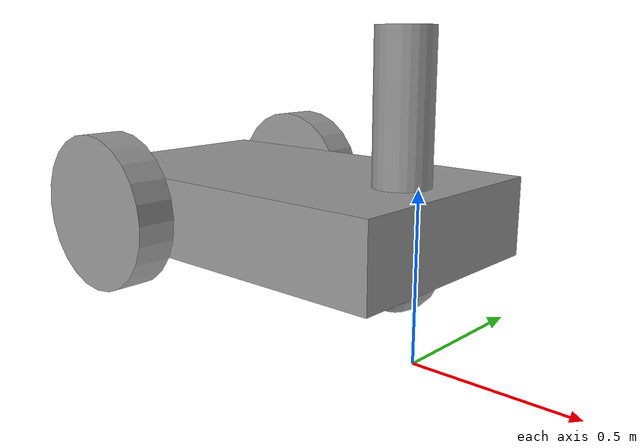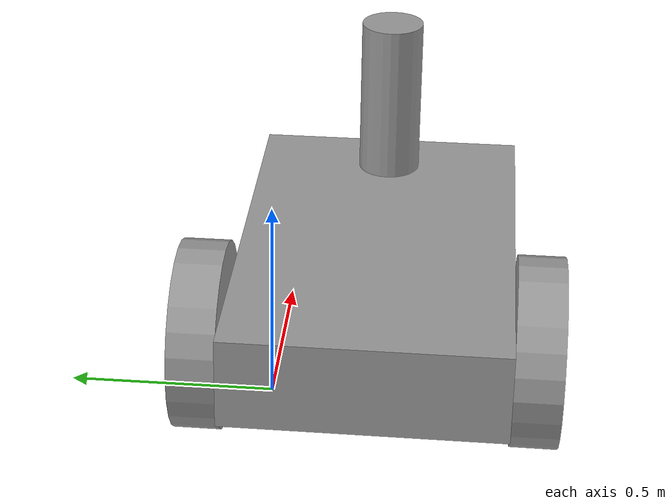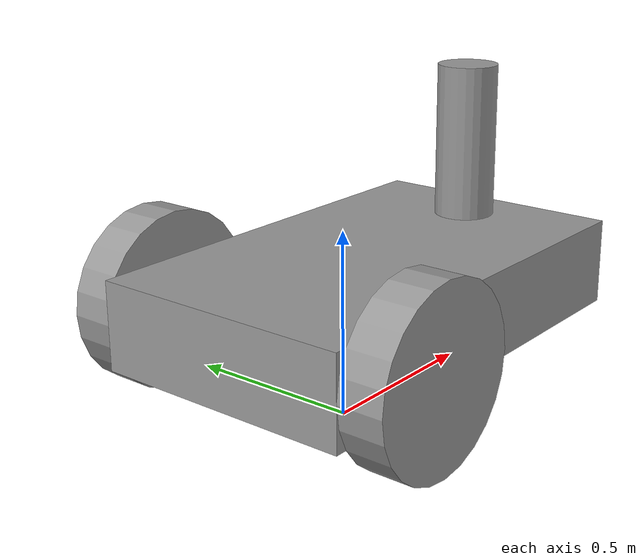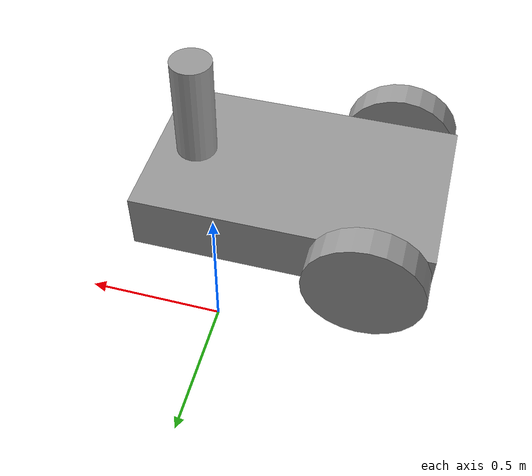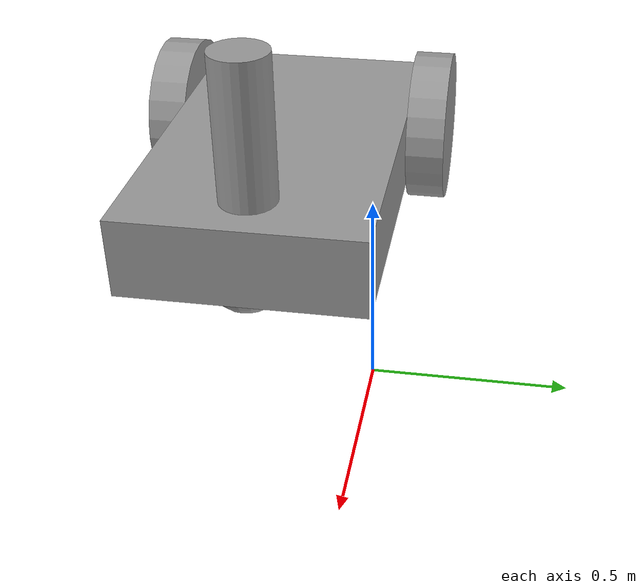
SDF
<?xml version='1.0'?>
<sdf version='1.7'>
  <model name='jason_bot'>
    <link name='link_1'>
      <inertial>
        <mass>0.111959</mass>
        <inertia>
          <ixx>0.00973396</ixx>
          <ixy>0</ixy>
          <ixz>0</ixz>
          <iyy>0.00310474</iyy>
          <iyz>0</iyz>
          <izz>0.0120306</izz>
        </inertia>
        <pose>0 0 0 0 -0 0</pose>
      </inertial>
      <pose>-0.224 -0.262981 0.465613 0 -0 0</pose>
      <gravity>1</gravity>
      <self_collide>0</self_collide>
      <kinematic>0</kinematic>
      <enable_wind>0</enable_wind>
      <visual name='visual'>
        <pose>0 0 0 0 -0 0</pose>
        <geometry>
          <box>
            <size>1 0.6 0.2</size>
          </box>
        </geometry>
        <material>
          <lighting>1</lighting>
          <script>
            <uri>file://media/materials/scripts/gazebo.material</uri>
            <name>Gazebo/Grey</name>
          </script>
          <shader type='pixel'>
            <normal_map>__default__</normal_map>
          </shader>
          <ambient>0.3 0.3 0.3 1</ambient>
          <diffuse>0.7 0.7 0.7 1</diffuse>
          <specular>0.01 0.01 0.01 1</specular>
          <emissive>0 0 0 1</emissive>
        </material>
        <transparency>0</transparency>
        <cast_shadows>1</cast_shadows>
      </visual>
      <collision name='collision'>
        <laser_retro>0</laser_retro>
        <max_contacts>10</max_contacts>
        <pose>0 0 0 0 -0 0</pose>
        <geometry>
          <box>
            <size>1 0.6 0.2</size>
          </box>
        </geometry>
        <surface>
          <friction>
            <ode>
              <mu>1</mu>
              <mu2>1</mu2>
              <fdir1>0 0 0</fdir1>
              <slip1>0</slip1>
              <slip2>0</slip2>
            </ode>
            <torsional>
              <coefficient>1</coefficient>
              <patch_radius>0</patch_radius>
              <surface_radius>0</surface_radius>
              <use_patch_radius>1</use_patch_radius>
              <ode>
                <slip>0</slip>
              </ode>
            </torsional>
          </friction>
          <bounce>
            <restitution_coefficient>0</restitution_coefficient>
            <threshold>1e+06</threshold>
          </bounce>
          <contact>
            <collide_without_contact>0</collide_without_contact>
            <collide_without_contact_bitmask>1</collide_without_contact_bitmask>
            <collide_bitmask>1</collide_bitmask>
            <ode>
              <soft_cfm>0</soft_cfm>
              <soft_erp>0.2</soft_erp>
              <kp>1e+13</kp>
              <kd>1</kd>
              <max_vel>0.01</max_vel>
              <min_depth>0</min_depth>
            </ode>
            <bullet>
              <split_impulse>1</split_impulse>
              <split_impulse_penetration_threshold>-0.01</split_impulse_penetration_threshold>
              <soft_cfm>0</soft_cfm>
              <soft_erp>0.2</soft_erp>
              <kp>1e+13</kp>
              <kd>1</kd>
            </bullet>
          </contact>
        </surface>
      </collision>
    </link>
    <link name='link_2'>
      <inertial>
        <mass>1</mass>
        <inertia>
          <ixx>0.145833</ixx>
          <ixy>0</ixy>
          <ixz>0</ixz>
          <iyy>0.145833</iyy>
          <iyz>0</iyz>
          <izz>0.125</izz>
        </inertia>
        <pose>0 0 0 0 -0 0</pose>
      </inertial>
      <pose>-0.524 -0.613 0.465613 1.5707 -0 0</pose>
      <gravity>1</gravity>
      <self_collide>0</self_collide>
      <kinematic>0</kinematic>
      <enable_wind>0</enable_wind>
      <visual name='visual'>
        <pose>0 0 0 0 -0 0</pose>
        <geometry>
          <cylinder>
            <radius>0.2</radius>
            <length>0.1</length>
          </cylinder>
        </geometry>
        <material>
          <lighting>1</lighting>
          <script>
            <uri>file://media/materials/scripts/gazebo.material</uri>
            <name>Gazebo/Grey</name>
          </script>
          <shader type='pixel'>
            <normal_map>__default__</normal_map>
          </shader>
          <ambient>0.3 0.3 0.3 1</ambient>
          <diffuse>0.7 0.7 0.7 1</diffuse>
          <specular>0.01 0.01 0.01 1</specular>
          <emissive>0 0 0 1</emissive>
        </material>
        <transparency>0</transparency>
        <cast_shadows>1</cast_shadows>
      </visual>
      <collision name='collision'>
        <laser_retro>0</laser_retro>
        <max_contacts>10</max_contacts>
        <pose>0 0 0 0 -0 0</pose>
        <geometry>
          <cylinder>
            <radius>0.2</radius>
            <length>0.1</length>
          </cylinder>
        </geometry>
        <surface>
          <friction>
            <ode>
              <mu>1</mu>
              <mu2>1</mu2>
              <fdir1>0 0 0</fdir1>
              <slip1>0</slip1>
              <slip2>0</slip2>
            </ode>
            <torsional>
              <coefficient>1</coefficient>
              <patch_radius>0</patch_radius>
              <surface_radius>0</surface_radius>
              <use_patch_radius>1</use_patch_radius>
              <ode>
                <slip>0</slip>
              </ode>
            </torsional>
          </friction>
          <bounce>
            <restitution_coefficient>0</restitution_coefficient>
            <threshold>1e+06</threshold>
          </bounce>
          <contact>
            <collide_without_contact>0</collide_without_contact>
            <collide_without_contact_bitmask>1</collide_without_contact_bitmask>
            <collide_bitmask>1</collide_bitmask>
            <ode>
              <soft_cfm>0</soft_cfm>
              <soft_erp>0.2</soft_erp>
              <kp>1e+13</kp>
              <kd>1</kd>
              <max_vel>0.01</max_vel>
              <min_depth>0</min_depth>
            </ode>
            <bullet>
              <split_impulse>1</split_impulse>
              <split_impulse_penetration_threshold>-0.01</split_impulse_penetration_threshold>
              <soft_cfm>0</soft_cfm>
              <soft_erp>0.2</soft_erp>
              <kp>1e+13</kp>
              <kd>1</kd>
            </bullet>
          </contact>
        </surface>
      </collision>
    </link>
    <link name='link_2_clone'>
      <inertial>
        <mass>1</mass>
        <inertia>
          <ixx>0.145833</ixx>
          <ixy>0</ixy>
          <ixz>0</ixz>
          <iyy>0.145833</iyy>
          <iyz>0</iyz>
          <izz>0.125</izz>
        </inertia>
        <pose>0 0 0 0 -0 0</pose>
      </inertial>
      <pose>-0.524 0.087038 0.465613 1.5707 -0 0</pose>
      <gravity>1</gravity>
      <self_collide>0</self_collide>
      <kinematic>0</kinematic>
      <enable_wind>0</enable_wind>
      <visual name='visual'>
        <pose>0 0 0 0 -0 0</pose>
        <geometry>
          <cylinder>
            <radius>0.2</radius>
            <length>0.1</length>
          </cylinder>
        </geometry>
        <material>
          <lighting>1</lighting>
          <script>
            <uri>file://media/materials/scripts/gazebo.material</uri>
            <name>Gazebo/Grey</name>
          </script>
          <shader type='pixel'>
            <normal_map>__default__</normal_map>
          </shader>
          <ambient>0.3 0.3 0.3 1</ambient>
          <diffuse>0.7 0.7 0.7 1</diffuse>
          <specular>0.01 0.01 0.01 1</specular>
          <emissive>0 0 0 1</emissive>
        </material>
        <transparency>0</transparency>
        <cast_shadows>1</cast_shadows>
      </visual>
      <collision name='collision'>
        <laser_retro>0</laser_retro>
        <max_contacts>10</max_contacts>
        <pose>0 0 0 0 -0 0</pose>
        <geometry>
          <cylinder>
            <radius>0.2</radius>
            <length>0.1</length>
          </cylinder>
        </geometry>
        <surface>
          <friction>
            <ode>
              <mu>1</mu>
              <mu2>1</mu2>
              <fdir1>0 0 0</fdir1>
              <slip1>0</slip1>
              <slip2>0</slip2>
            </ode>
            <torsional>
              <coefficient>1</coefficient>
              <patch_radius>0</patch_radius>
              <surface_radius>0</surface_radius>
              <use_patch_radius>1</use_patch_radius>
              <ode>
                <slip>0</slip>
              </ode>
            </torsional>
          </friction>
          <bounce>
            <restitution_coefficient>0</restitution_coefficient>
            <threshold>1e+06</threshold>
          </bounce>
          <contact>
            <collide_without_contact>0</collide_without_contact>
            <collide_without_contact_bitmask>1</collide_without_contact_bitmask>
            <collide_bitmask>1</collide_bitmask>
            <ode>
              <soft_cfm>0</soft_cfm>
              <soft_erp>0.2</soft_erp>
              <kp>1e+13</kp>
              <kd>1</kd>
              <max_vel>0.01</max_vel>
              <min_depth>0</min_depth>
            </ode>
            <bullet>
              <split_impulse>1</split_impulse>
              <split_impulse_penetration_threshold>-0.01</split_impulse_penetration_threshold>
              <soft_cfm>0</soft_cfm>
              <soft_erp>0.2</soft_erp>
              <kp>1e+13</kp>
              <kd>1</kd>
            </bullet>
          </contact>
        </surface>
      </collision>
    </link>
    <link name='link_3'>
      <inertial>
        <mass>0.0096568</mass>
        <inertia>
          <ixx>4.37931e-05</ixx>
          <ixy>0</ixy>
          <ixz>0</ixz>
          <iyy>4.37931e-05</iyy>
          <iyz>0</iyz>
          <izz>4.37931e-05</izz>
        </inertia>
        <pose>0 0 0 0 -0 0</pose>
      </inertial>
      <pose>0.136 -0.279742 0.378612 0 -0 0</pose>
      <visual name='visual'>
        <pose>0 0 0 0 -0 0</pose>
        <geometry>
          <sphere>
            <radius>0.106477</radius>
          </sphere>
        </geometry>
        <material>
          <lighting>1</lighting>
          <script>
            <uri>file://media/materials/scripts/gazebo.material</uri>
            <name>Gazebo/Grey</name>
          </script>
          <shader type='pixel'/>
          <emissive>0 0 0 1</emissive>
        </material>
        <transparency>0</transparency>
        <cast_shadows>1</cast_shadows>
      </visual>
      <collision name='collision'>
        <laser_retro>0</laser_retro>
        <max_contacts>10</max_contacts>
        <pose>0 0 0 0 -0 0</pose>
        <geometry>
          <sphere>
            <radius>0.106477</radius>
          </sphere>
        </geometry>
        <surface>
          <friction>
            <ode>
              <mu>1</mu>
              <mu2>1</mu2>
              <fdir1>0 0 0</fdir1>
              <slip1>0</slip1>
              <slip2>0</slip2>
            </ode>
            <torsional>
              <coefficient>1</coefficient>
              <patch_radius>0</patch_radius>
              <surface_radius>0</surface_radius>
              <use_patch_radius>1</use_patch_radius>
              <ode>
                <slip>0</slip>
              </ode>
            </torsional>
          </friction>
          <bounce>
            <restitution_coefficient>0</restitution_coefficient>
            <threshold>1e+06</threshold>
          </bounce>
          <contact>
            <collide_without_contact>0</collide_without_contact>
            <collide_without_contact_bitmask>1</collide_without_contact_bitmask>
            <collide_bitmask>1</collide_bitmask>
            <ode>
              <soft_cfm>0</soft_cfm>
              <soft_erp>0.2</soft_erp>
              <kp>1e+13</kp>
              <kd>1</kd>
              <max_vel>0.01</max_vel>
              <min_depth>0</min_depth>
            </ode>
            <bullet>
              <split_impulse>1</split_impulse>
              <split_impulse_penetration_threshold>-0.01</split_impulse_penetration_threshold>
              <soft_cfm>0</soft_cfm>
              <soft_erp>0.2</soft_erp>
              <kp>1e+13</kp>
              <kd>1</kd>
            </bullet>
          </contact>
        </surface>
      </collision>
    </link>
    <link name='link_4'>
      <inertial>
        <mass>0.00988067</mass>
        <inertia>
          <ixx>0.00018749</ixx>
          <ixy>0</ixy>
          <ixz>0</ixz>
          <iyy>0.00018749</iyy>
          <iyz>0</iyz>
          <izz>2.653e-05</izz>
        </inertia>
        <pose>0 0 0 0 -0 0</pose>
      </inertial>
      <pose>0.136 -0.264648 0.72455 0 -0 0</pose>
      <gravity>1</gravity>
      <self_collide>0</self_collide>
      <kinematic>0</kinematic>
      <enable_wind>0</enable_wind>
      <visual name='visual'>
        <pose>0 0 0 0 -0 0</pose>
        <geometry>
          <cylinder>
            <radius>0.07</radius>
            <length>0.4</length>
          </cylinder>
        </geometry>
        <material>
          <lighting>1</lighting>
          <script>
            <uri>file://media/materials/scripts/gazebo.material</uri>
            <name>Gazebo/Grey</name>
          </script>
          <shader type='pixel'>
            <normal_map>__default__</normal_map>
          </shader>
          <emissive>0 0 0 1</emissive>
          <ambient>0.3 0.3 0.3 1</ambient>
          <diffuse>0.7 0.7 0.7 1</diffuse>
          <specular>0.01 0.01 0.01 1</specular>
        </material>
        <transparency>0</transparency>
        <cast_shadows>1</cast_shadows>
      </visual>
      <collision name='collision'>
        <laser_retro>0</laser_retro>
        <max_contacts>10</max_contacts>
        <pose>0 0 0 0 -0 0</pose>
        <geometry>
          <cylinder>
            <radius>0.07</radius>
            <length>0.4</length>
          </cylinder>
        </geometry>
        <surface>
          <friction>
            <ode>
              <mu>1</mu>
              <mu2>1</mu2>
              <fdir1>0 0 0</fdir1>
              <slip1>0</slip1>
              <slip2>0</slip2>
            </ode>
            <torsional>
              <coefficient>1</coefficient>
              <patch_radius>0</patch_radius>
              <surface_radius>0</surface_radius>
              <use_patch_radius>1</use_patch_radius>
              <ode>
                <slip>0</slip>
              </ode>
            </torsional>
          </friction>
          <bounce>
            <restitution_coefficient>0</restitution_coefficient>
            <threshold>1e+06</threshold>
          </bounce>
          <contact>
            <collide_without_contact>0</collide_without_contact>
            <collide_without_contact_bitmask>1</collide_without_contact_bitmask>
            <collide_bitmask>1</collide_bitmask>
            <ode>
              <soft_cfm>0</soft_cfm>
              <soft_erp>0.2</soft_erp>
              <kp>1e+13</kp>
              <kd>1</kd>
              <max_vel>0.01</max_vel>
              <min_depth>0</min_depth>
            </ode>
            <bullet>
              <split_impulse>1</split_impulse>
              <split_impulse_penetration_threshold>-0.01</split_impulse_penetration_threshold>
              <soft_cfm>0</soft_cfm>
              <soft_erp>0.2</soft_erp>
              <kp>1e+13</kp>
              <kd>1</kd>
            </bullet>
          </contact>
        </surface>
      </collision>
    </link>
    <joint name='link_1_JOINT_2' type='revolute'>
      <parent>link_1</parent>
      <child>link_2_clone</child>
      <pose>0 0 0 0 -0 0</pose>
      <axis>
        <xyz>-0 -0 -1</xyz>
        <limit>
          <lower>-1.79769e+308</lower>
          <upper>1.79769e+308</upper>
          <effort>-1</effort>
          <velocity>-1</velocity>
        </limit>
        <dynamics>
          <spring_reference>0</spring_reference>
          <spring_stiffness>0</spring_stiffness>
          <damping>0</damping>
        </dynamics>
      </axis>
      <physics>
        <ode>
          <limit>
            <cfm>0</cfm>
            <erp>0.2</erp>
          </limit>
          <suspension>
            <cfm>0</cfm>
            <erp>0.2</erp>
          </suspension>
        </ode>
      </physics>
    </joint>
    <joint name='link_1_JOINT_4' type='revolute'>
      <parent>link_1</parent>
      <child>link_2</child>
      <pose>0 0 0 0 -0 0</pose>
      <axis>
        <xyz>1 0 0</xyz>
        <limit>
          <lower>-1.79769e+308</lower>
          <upper>1.79769e+308</upper>
          <effort>-1</effort>
          <velocity>-1</velocity>
        </limit>
        <dynamics>
          <spring_reference>0</spring_reference>
          <spring_stiffness>0</spring_stiffness>
          <damping>0</damping>
        </dynamics>
      </axis>
      <physics>
        <ode>
          <limit>
            <cfm>0</cfm>
            <erp>0.2</erp>
          </limit>
          <suspension>
            <cfm>0</cfm>
            <erp>0.2</erp>
          </suspension>
        </ode>
      </physics>
    </joint>
    <joint name='link_1_JOINT_5' type='ball'>
      <parent>link_1</parent>
      <child>link_3</child>
      <pose>0 0 0 0 -0 0</pose>
      <physics>
        <ode>
          <limit>
            <cfm>0</cfm>
            <erp>0.2</erp>
          </limit>
          <suspension>
            <cfm>0</cfm>
            <erp>0.2</erp>
          </suspension>
        </ode>
      </physics>
    </joint>
    <joint name='link_1_JOINT_6' type='revolute'>
      <parent>link_1</parent>
      <child>link_4</child>
      <pose>0 0 0 0 -0 0</pose>
      <axis>
        <xyz>0 0 1</xyz>
        <limit>
          <lower>-1.79769e+308</lower>
          <upper>1.79769e+308</upper>
          <effort>-1</effort>
          <velocity>-1</velocity>
        </limit>
        <dynamics>
          <spring_reference>0</spring_reference>
          <spring_stiffness>0</spring_stiffness>
          <damping>0</damping>
        </dynamics>
      </axis>
      <physics>
        <ode>
          <limit>
            <cfm>0</cfm>
            <erp>0.2</erp>
          </limit>
          <suspension>
            <cfm>0</cfm>
            <erp>0.2</erp>
          </suspension>
        </ode>
      </physics>
    </joint>
    <static>0</static>
    <allow_auto_disable>1</allow_auto_disable>
  </model>
</sdf>
